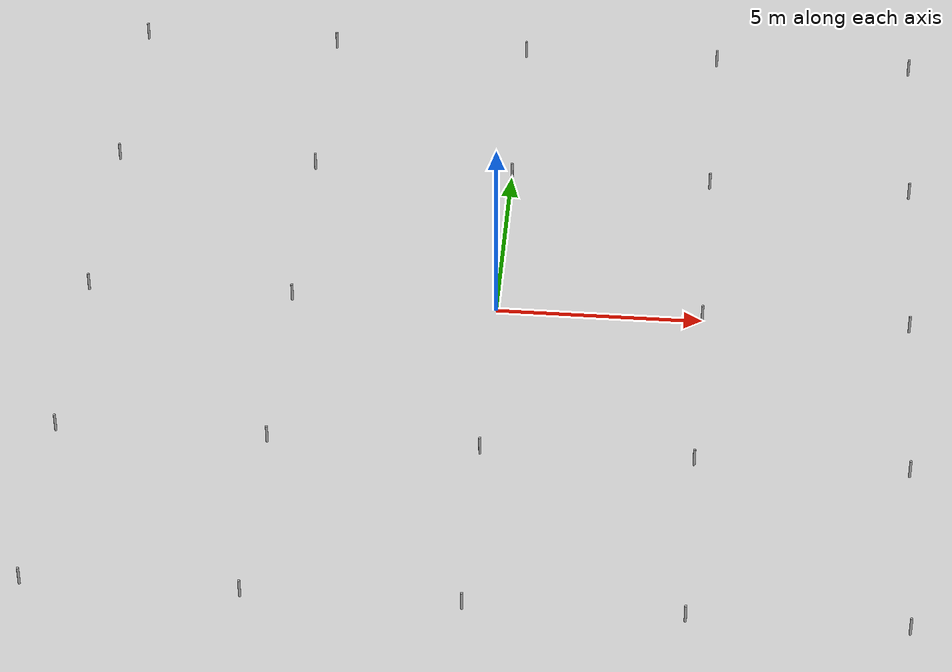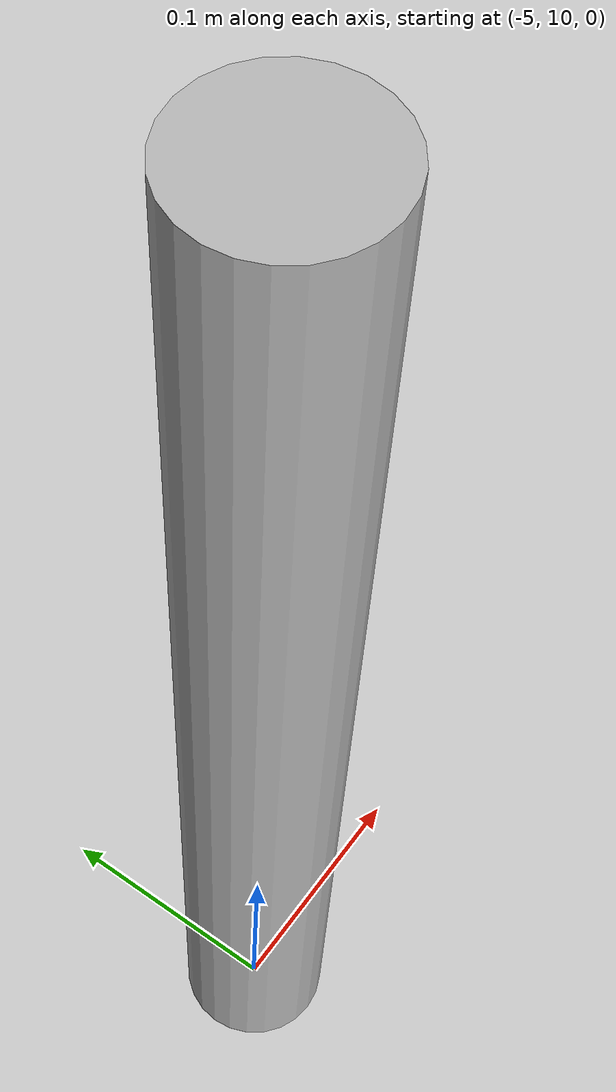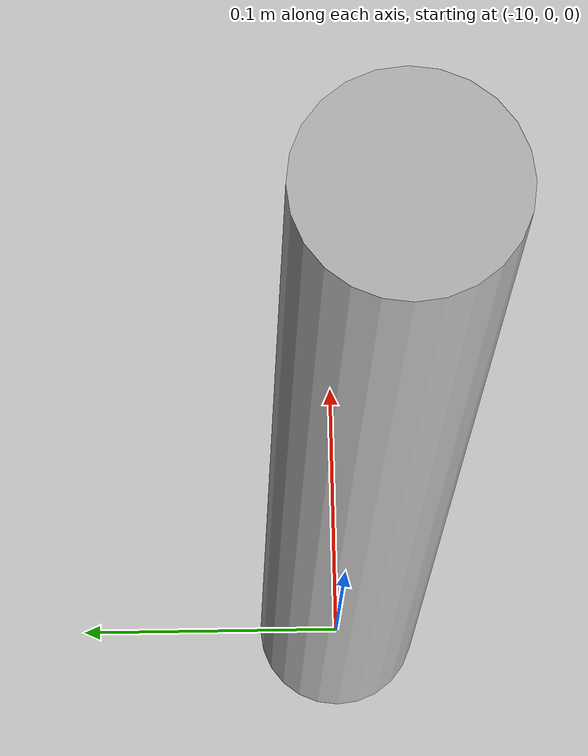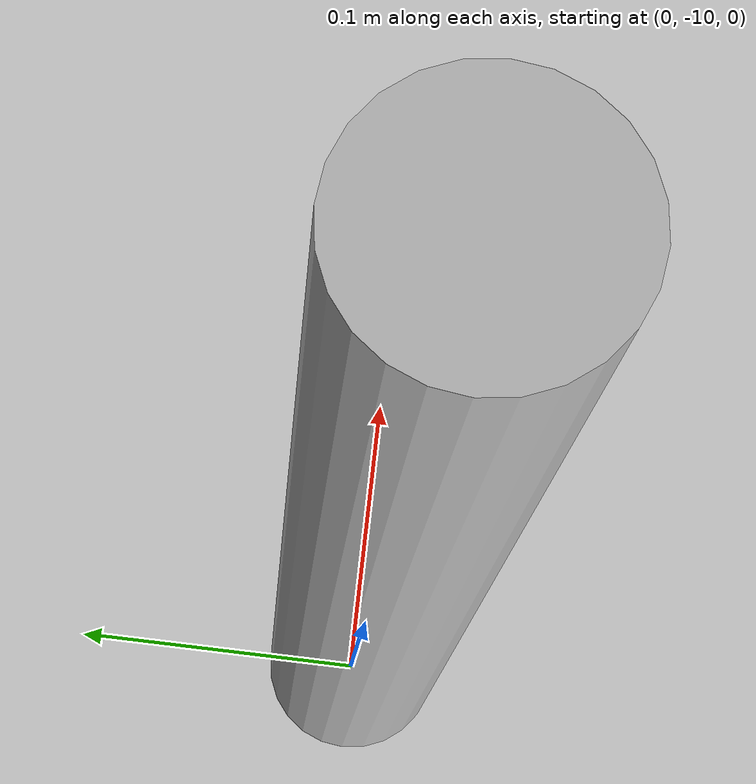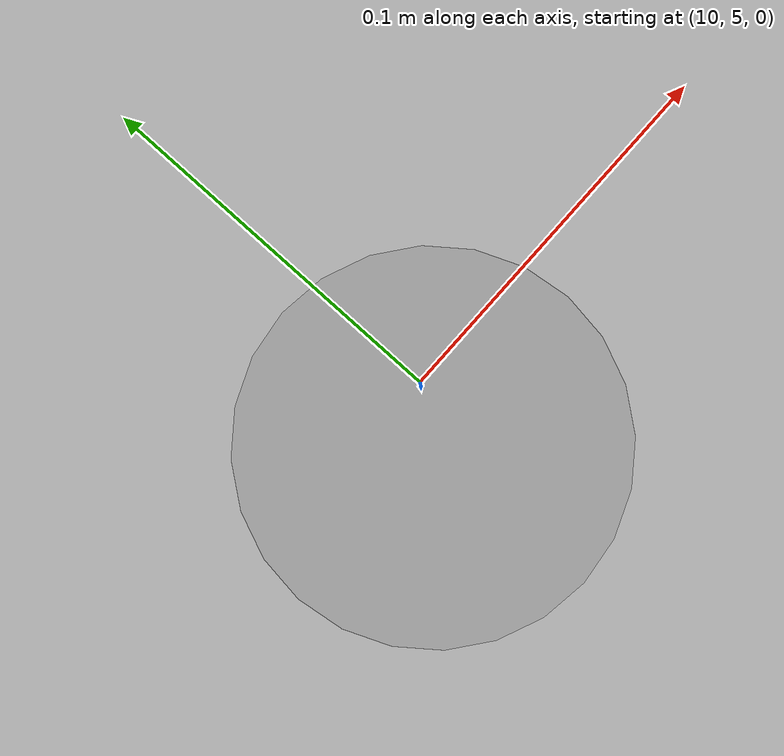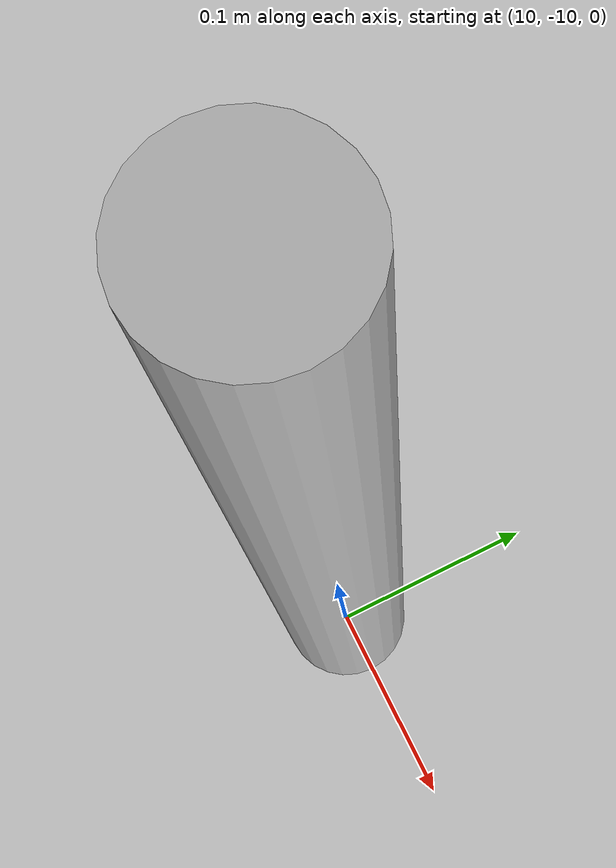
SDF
<?xml version="1.0" ?>
<sdf version="1.7">
    <world name="empty_world">
        <physics type="ode">
            <max_step_size>0.01</max_step_size>
        </physics>
        <light type="directional" name="sun">
            <cast_shadows>true</cast_shadows>
            <pose>0 0 10 0 0 0</pose>
            <diffuse>0.8 0.8 0.8 1</diffuse>
            <specular>0.2 0.2 0.2 1</specular>
            <attenuation>
                <range>1000</range>
                <constant>0.9</constant>
                <linear>0.01</linear>
                <quadratic>0.001</quadratic>
            </attenuation>
            <direction>-0.5 0.1 -0.9</direction>
        </light>

        <model name="ground_plane">
            <static>true</static>
           <link name="link">
                <collision name="collision">
                    <geometry>
                        <plane>
                            <normal>0 0 1</normal>
                        </plane>
                    </geometry>
                </collision>
                <visual name="visual">
                    <geometry>
                        <plane>
                            <normal>0 0 1</normal>
                            <size>100 100</size>
                        </plane>
                    </geometry>
                    <material>
                        <ambient>0.8 0.8 0.8 1</ambient>
                        <diffuse>0.8 0.8 0.8 1</diffuse>
                        <specular>0.8 0.8 0.8 1</specular>
                    </material>
                </visual>
            </link>
        </model>

  <!-- Paper sensors (visual only, no collision) -->

  <model name="paper_sensor_00">
    <static>true</static>
    <pose>-10.000000 -10.000000 0.250000 0 0 0</pose>
    <link name="link">
      <visual name="visual">
        <geometry>
          <cylinder>
            <radius>0.030000</radius>
            <length>0.500000</length>
          </cylinder>
        </geometry>
      </visual>
    </link>
  </model>

  <model name="paper_sensor_01">
    <static>true</static>
    <pose>-5.000000 -10.000000 0.250000 0 0 0</pose>
    <link name="link">
      <visual name="visual">
        <geometry>
          <cylinder>
            <radius>0.030000</radius>
            <length>0.500000</length>
          </cylinder>
        </geometry>
      </visual>
    </link>
  </model>

  <model name="paper_sensor_02">
    <static>true</static>
    <pose>0.000000 -10.000000 0.250000 0 0 0</pose>
    <link name="link">
      <visual name="visual">
        <geometry>
          <cylinder>
            <radius>0.030000</radius>
            <length>0.500000</length>
          </cylinder>
        </geometry>
      </visual>
    </link>
  </model>

  <model name="paper_sensor_03">
    <static>true</static>
    <pose>5.000000 -10.000000 0.250000 0 0 0</pose>
    <link name="link">
      <visual name="visual">
        <geometry>
          <cylinder>
            <radius>0.030000</radius>
            <length>0.500000</length>
          </cylinder>
        </geometry>
      </visual>
    </link>
  </model>

  <model name="paper_sensor_04">
    <static>true</static>
    <pose>10.000000 -10.000000 0.250000 0 0 0</pose>
    <link name="link">
      <visual name="visual">
        <geometry>
          <cylinder>
            <radius>0.030000</radius>
            <length>0.500000</length>
          </cylinder>
        </geometry>
      </visual>
    </link>
  </model>

  <model name="paper_sensor_05">
    <static>true</static>
    <pose>-10.000000 -5.000000 0.250000 0 0 0</pose>
    <link name="link">
      <visual name="visual">
        <geometry>
          <cylinder>
            <radius>0.030000</radius>
            <length>0.500000</length>
          </cylinder>
        </geometry>
      </visual>
    </link>
  </model>

  <model name="paper_sensor_06">
    <static>true</static>
    <pose>-5.000000 -5.000000 0.250000 0 0 0</pose>
    <link name="link">
      <visual name="visual">
        <geometry>
          <cylinder>
            <radius>0.030000</radius>
            <length>0.500000</length>
          </cylinder>
        </geometry>
      </visual>
    </link>
  </model>

  <model name="paper_sensor_07">
    <static>true</static>
    <pose>0.000000 -5.000000 0.250000 0 0 0</pose>
    <link name="link">
      <visual name="visual">
        <geometry>
          <cylinder>
            <radius>0.030000</radius>
            <length>0.500000</length>
          </cylinder>
        </geometry>
      </visual>
    </link>
  </model>

  <model name="paper_sensor_08">
    <static>true</static>
    <pose>5.000000 -5.000000 0.250000 0 0 0</pose>
    <link name="link">
      <visual name="visual">
        <geometry>
          <cylinder>
            <radius>0.030000</radius>
            <length>0.500000</length>
          </cylinder>
        </geometry>
      </visual>
    </link>
  </model>

  <model name="paper_sensor_09">
    <static>true</static>
    <pose>10.000000 -5.000000 0.250000 0 0 0</pose>
    <link name="link">
      <visual name="visual">
        <geometry>
          <cylinder>
            <radius>0.030000</radius>
            <length>0.500000</length>
          </cylinder>
        </geometry>
      </visual>
    </link>
  </model>

  <model name="paper_sensor_10">
    <static>true</static>
    <pose>-10.000000 0.000000 0.250000 0 0 0</pose>
    <link name="link">
      <visual name="visual">
        <geometry>
          <cylinder>
            <radius>0.030000</radius>
            <length>0.500000</length>
          </cylinder>
        </geometry>
      </visual>
    </link>
  </model>

  <model name="paper_sensor_11">
    <static>true</static>
    <pose>-5.000000 0.000000 0.250000 0 0 0</pose>
    <link name="link">
      <visual name="visual">
        <geometry>
          <cylinder>
            <radius>0.030000</radius>
            <length>0.500000</length>
          </cylinder>
        </geometry>
      </visual>
    </link>
  </model>

  <model name="paper_sensor_12">
    <static>true</static>
    <pose>0.000000 0.000000 0.250000 0 0 0</pose>
    <link name="link">
      <visual name="visual">
        <geometry>
          <cylinder>
            <radius>0.030000</radius>
            <length>0.500000</length>
          </cylinder>
        </geometry>
      </visual>
    </link>
  </model>

  <model name="paper_sensor_13">
    <static>true</static>
    <pose>5.000000 0.000000 0.250000 0 0 0</pose>
    <link name="link">
      <visual name="visual">
        <geometry>
          <cylinder>
            <radius>0.030000</radius>
            <length>0.500000</length>
          </cylinder>
        </geometry>
      </visual>
    </link>
  </model>

  <model name="paper_sensor_14">
    <static>true</static>
    <pose>10.000000 0.000000 0.250000 0 0 0</pose>
    <link name="link">
      <visual name="visual">
        <geometry>
          <cylinder>
            <radius>0.030000</radius>
            <length>0.500000</length>
          </cylinder>
        </geometry>
      </visual>
    </link>
  </model>

  <model name="paper_sensor_15">
    <static>true</static>
    <pose>-10.000000 5.000000 0.250000 0 0 0</pose>
    <link name="link">
      <visual name="visual">
        <geometry>
          <cylinder>
            <radius>0.030000</radius>
            <length>0.500000</length>
          </cylinder>
        </geometry>
      </visual>
    </link>
  </model>

  <model name="paper_sensor_16">
    <static>true</static>
    <pose>-5.000000 5.000000 0.250000 0 0 0</pose>
    <link name="link">
      <visual name="visual">
        <geometry>
          <cylinder>
            <radius>0.030000</radius>
            <length>0.500000</length>
          </cylinder>
        </geometry>
      </visual>
    </link>
  </model>

  <model name="paper_sensor_17">
    <static>true</static>
    <pose>0.000000 5.000000 0.250000 0 0 0</pose>
    <link name="link">
      <visual name="visual">
        <geometry>
          <cylinder>
            <radius>0.030000</radius>
            <length>0.500000</length>
          </cylinder>
        </geometry>
      </visual>
    </link>
  </model>

  <model name="paper_sensor_18">
    <static>true</static>
    <pose>5.000000 5.000000 0.250000 0 0 0</pose>
    <link name="link">
      <visual name="visual">
        <geometry>
          <cylinder>
            <radius>0.030000</radius>
            <length>0.500000</length>
          </cylinder>
        </geometry>
      </visual>
    </link>
  </model>

  <model name="paper_sensor_19">
    <static>true</static>
    <pose>10.000000 5.000000 0.250000 0 0 0</pose>
    <link name="link">
      <visual name="visual">
        <geometry>
          <cylinder>
            <radius>0.030000</radius>
            <length>0.500000</length>
          </cylinder>
        </geometry>
      </visual>
    </link>
  </model>

  <model name="paper_sensor_20">
    <static>true</static>
    <pose>-10.000000 10.000000 0.250000 0 0 0</pose>
    <link name="link">
      <visual name="visual">
        <geometry>
          <cylinder>
            <radius>0.030000</radius>
            <length>0.500000</length>
          </cylinder>
        </geometry>
      </visual>
    </link>
  </model>

  <model name="paper_sensor_21">
    <static>true</static>
    <pose>-5.000000 10.000000 0.250000 0 0 0</pose>
    <link name="link">
      <visual name="visual">
        <geometry>
          <cylinder>
            <radius>0.030000</radius>
            <length>0.500000</length>
          </cylinder>
        </geometry>
      </visual>
    </link>
  </model>

  <model name="paper_sensor_22">
    <static>true</static>
    <pose>0.000000 10.000000 0.250000 0 0 0</pose>
    <link name="link">
      <visual name="visual">
        <geometry>
          <cylinder>
            <radius>0.030000</radius>
            <length>0.500000</length>
          </cylinder>
        </geometry>
      </visual>
    </link>
  </model>

  <model name="paper_sensor_23">
    <static>true</static>
    <pose>5.000000 10.000000 0.250000 0 0 0</pose>
    <link name="link">
      <visual name="visual">
        <geometry>
          <cylinder>
            <radius>0.030000</radius>
            <length>0.500000</length>
          </cylinder>
        </geometry>
      </visual>
    </link>
  </model>

  <model name="paper_sensor_24">
    <static>true</static>
    <pose>10.000000 10.000000 0.250000 0 0 0</pose>
    <link name="link">
      <visual name="visual">
        <geometry>
          <cylinder>
            <radius>0.030000</radius>
            <length>0.500000</length>
          </cylinder>
        </geometry>
      </visual>
    </link>
  </model>
  <model name="ekf_proxy">
    <static>true</static>
    <pose>0 0 0.01 0 0 0</pose>

    <!-- Bilerek visual/collision YOK: görünmez proxy -->
    <link name="link"/>
  </model>
  <model name="knet_proxy">
    <static>true</static>
    <pose>0 0 0.01 0 0 0</pose>
    <!-- Görünmez proxy: visual/collision yok -->
    <link name="link"/>
  </model>

</world>
</sdf>
